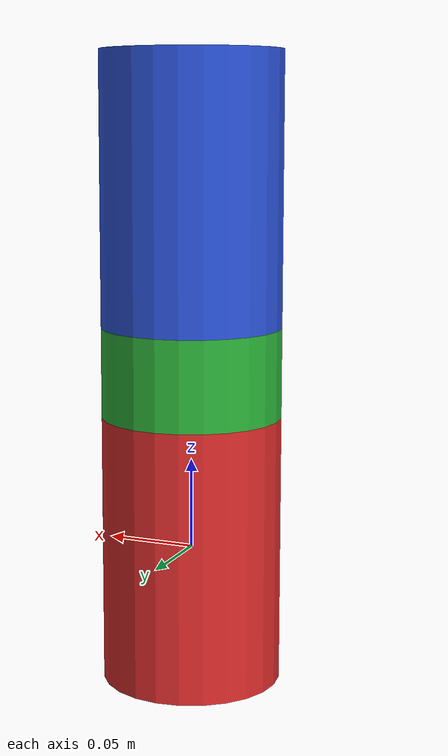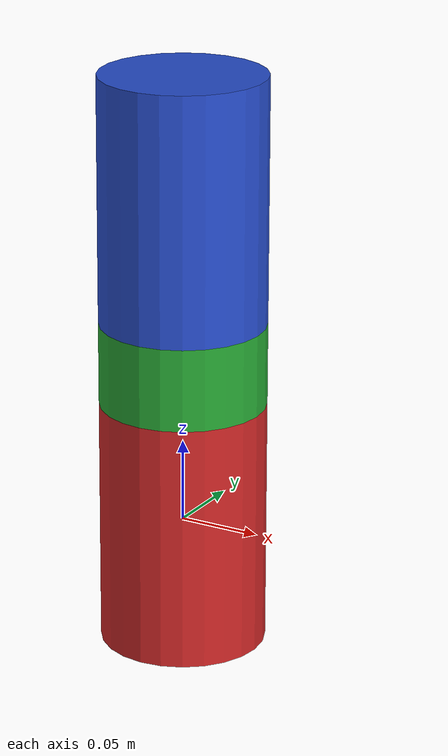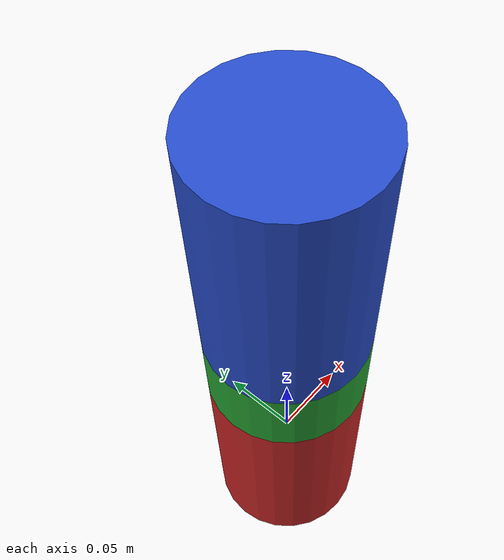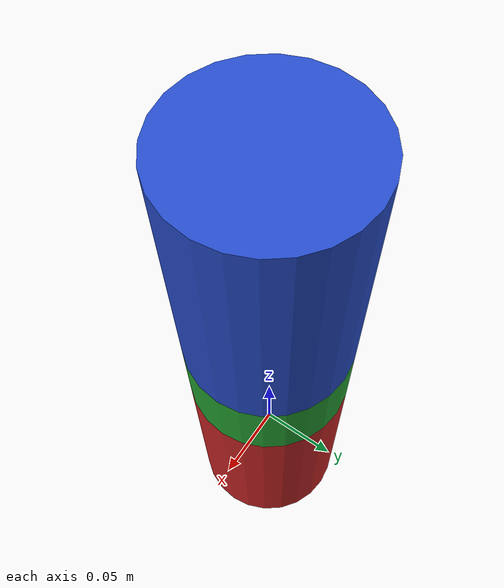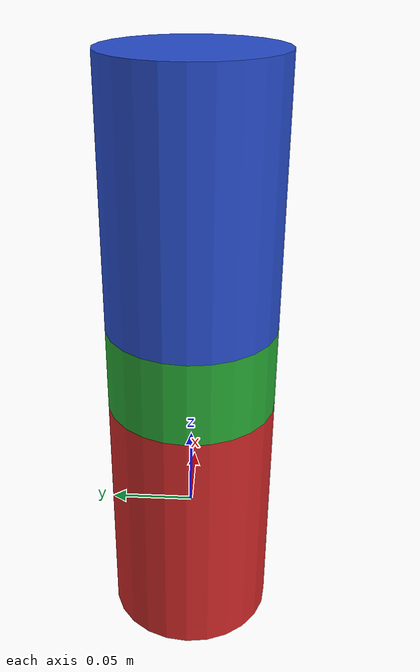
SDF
<sdf version='1.5'>
  <model name='snake'>

    <link name='base_link'>
      <pose>0 0 0 0 -0 0</pose>
      <inertial>
        <pose>0 0 0 0 -0 0</pose>
        <mass>1.031</mass>
        <inertia>
          <ixx>0.00357413</ixx>
          <ixy>0</ixy>
          <ixz>0</ixz>
          <iyy>0.00508627</iyy>
          <iyz>0</iyz>
          <izz>0.00838547</izz>
        </inertia>
      </inertial>
      <collision name='base_link_collision'>
        <pose>0 0 0 0 -0 0</pose>
        <geometry>
          <cylinder>
            <length>0.15</length>
            <radius>0.05</radius>
          </cylinder>
        </geometry>
      </collision>
      <visual name='base_link_visual'>
        <pose>0 0 0 0 -0 0</pose>
        <geometry>
          <cylinder>
            <length>0.15</length>
            <radius>0.05</radius>
          </cylinder>
        </geometry>
        <material>
          <script>
            <uri>file://media/materials/scripts/gazebo.material</uri>
            <name>Gazebo/Red</name>
          </script>
        </material>
      </visual>
    </link>

    <link name='aux_body_link'>
      <pose>0 0 0.1 0 -0 0</pose>
      <inertial>
        <pose>0 0 0 0 -0 0</pose>
        <mass>0.02</mass>
        <inertia>
          <ixx>8e-06</ixx>
          <ixy>0</ixy>
          <ixz>0</ixz>
          <iyy>8e-06</iyy>
          <iyz>0</iyz>
          <izz>6.66667e-07</izz>
        </inertia>
      </inertial>
      <collision name='aux_body_link_collision'>
        <pose>0 0 0 0 -0 0</pose>
        <geometry>
          <cylinder>
            <length>0.05</length>
            <radius>0.05</radius>
          </cylinder>
        </geometry>
      </collision>
      <visual name='aux_body_link_visual'>
        <pose>0 0 0 0 -0 0</pose>
        <geometry>
          <cylinder>
            <length>0.05</length>
            <radius>0.05</radius>
          </cylinder>
        </geometry>
        <material>
          <script>
            <uri>file://media/materials/scripts/gazebo.material</uri>
            <name>Gazebo/Green</name>
          </script>
        </material>
      </visual>
    </link>

    <joint name='body_leg_0' type='revolute'>
        <pose>0 0 -0.025 0 0 0</pose>
      <child>aux_body_link</child>
      <parent>base_link</parent>
      <axis>
        <xyz>1 0 0</xyz>
        <limit>
          <lower>-0.785398</lower>
          <upper>0.785398</upper>
          <effort>20</effort>
          <velocity>2</velocity>
        </limit>
      </axis>
    </joint>

    <!-- The Pose is absolute is where the  axis will be placed-->
    <link name='body_link'>
      <pose>0 0 0.2 0 -0 0</pose>
      <inertial>
        <pose>0 0 0 0 -0 0</pose>
        <mass>0.02</mass>
        <inertia>
          <ixx>8e-06</ixx>
          <ixy>0</ixy>
          <ixz>0</ixz>
          <iyy>8e-06</iyy>
          <iyz>0</iyz>
          <izz>6.66667e-07</izz>
        </inertia>
      </inertial>
      <collision name='body_link_collision'>
        <pose>0 0 0 0 -0 0</pose>
        <geometry>
          <cylinder>
            <length>0.15</length>
            <radius>0.05</radius>
          </cylinder>
        </geometry>
      </collision>
      <visual name='body_link_visual'>
        <pose>0 0 0 0 -0 0</pose>
        <geometry>
          <cylinder>
            <length>0.15</length>
            <radius>0.05</radius>
          </cylinder>
        </geometry>
        <material>
          <script>
            <uri>file://media/materials/scripts/gazebo.material</uri>
            <name>Gazebo/Blue</name>
          </script>
        </material>
      </visual>
    </link>

    <!-- Its reffered to the child frame -->
    <joint name='body_leg_1' type='revolute'>
        <pose>0 0 -0.075 0 0 0</pose>
      <child>body_link</child>
      <parent>aux_body_link</parent>
      <axis>
        <xyz>0 1 0</xyz>
        <limit>
          <lower>-0.785398</lower>
          <upper>0.785398</upper>
          <effort>20</effort>
          <velocity>2</velocity>
        </limit>
      </axis>
    </joint>

  </model>
</sdf>
